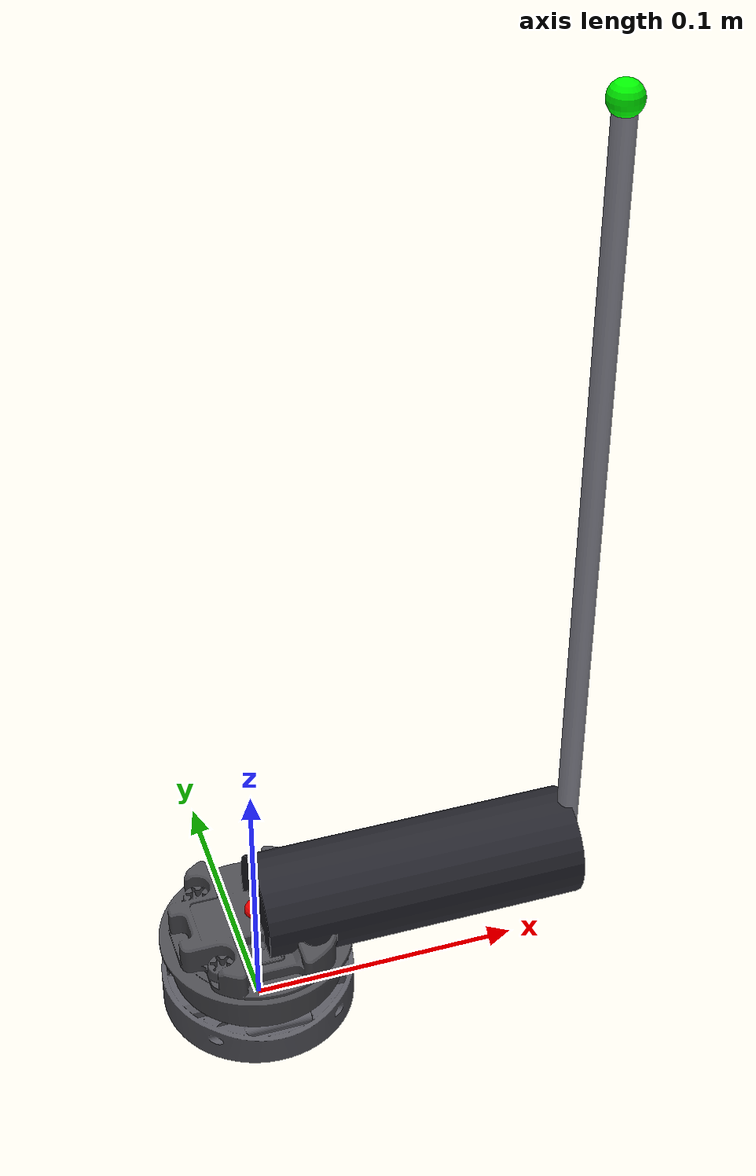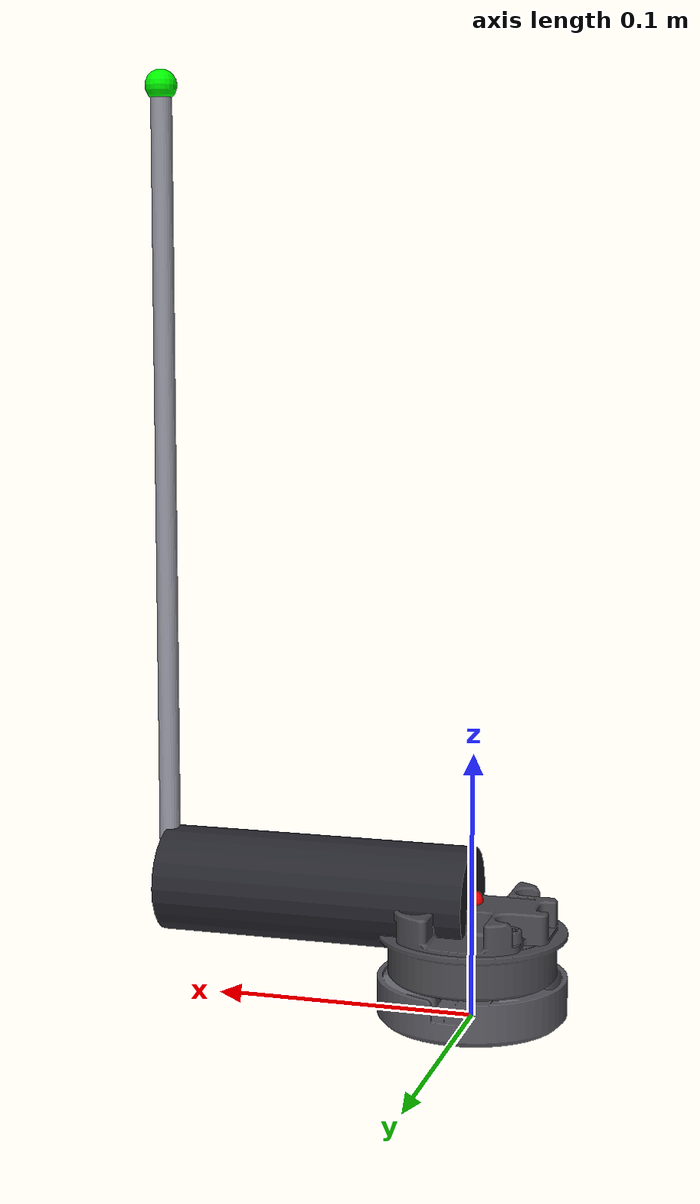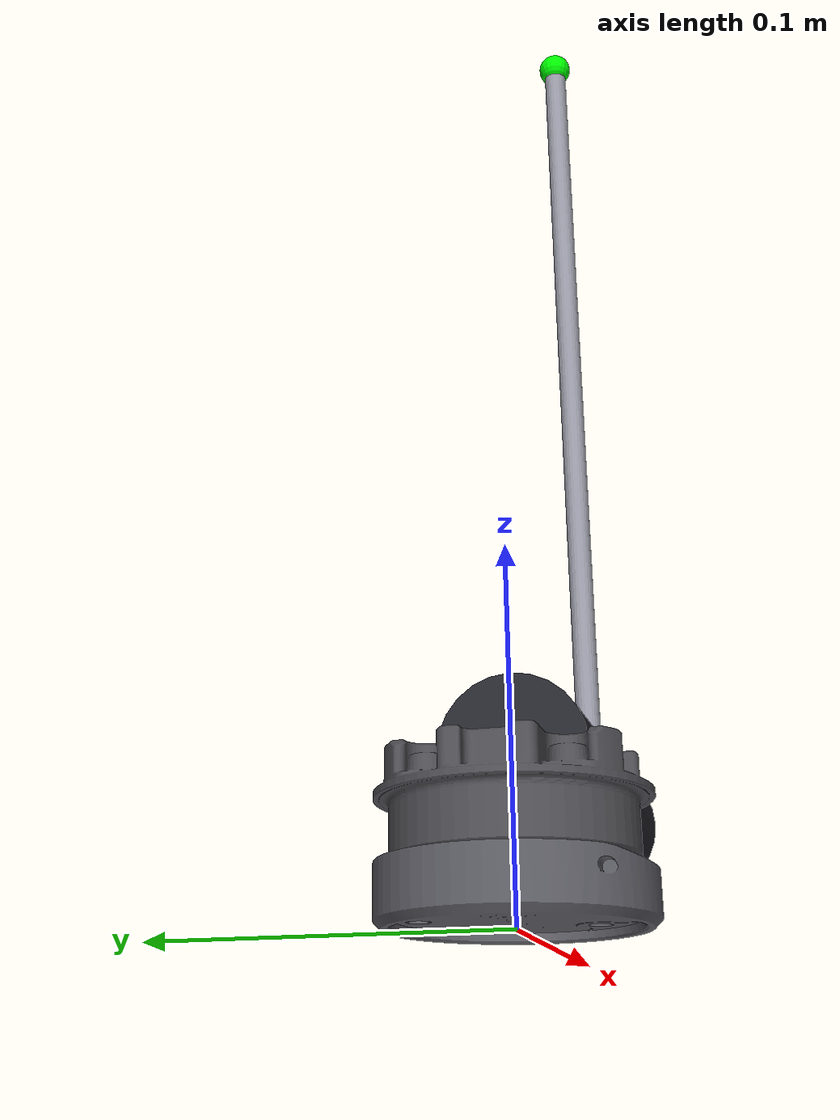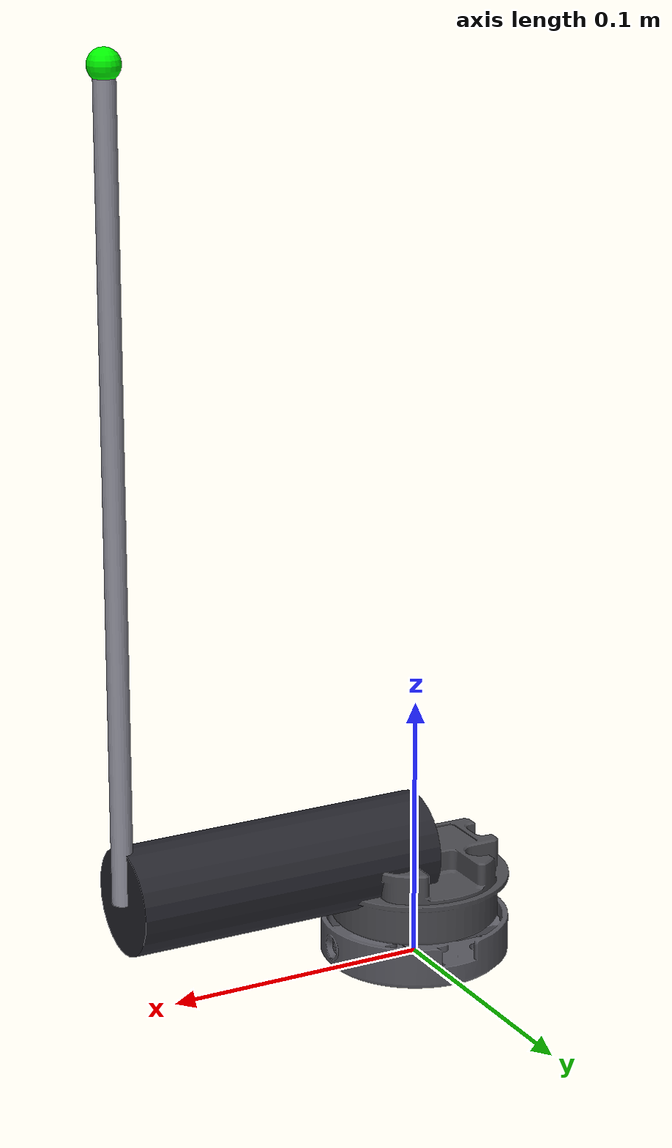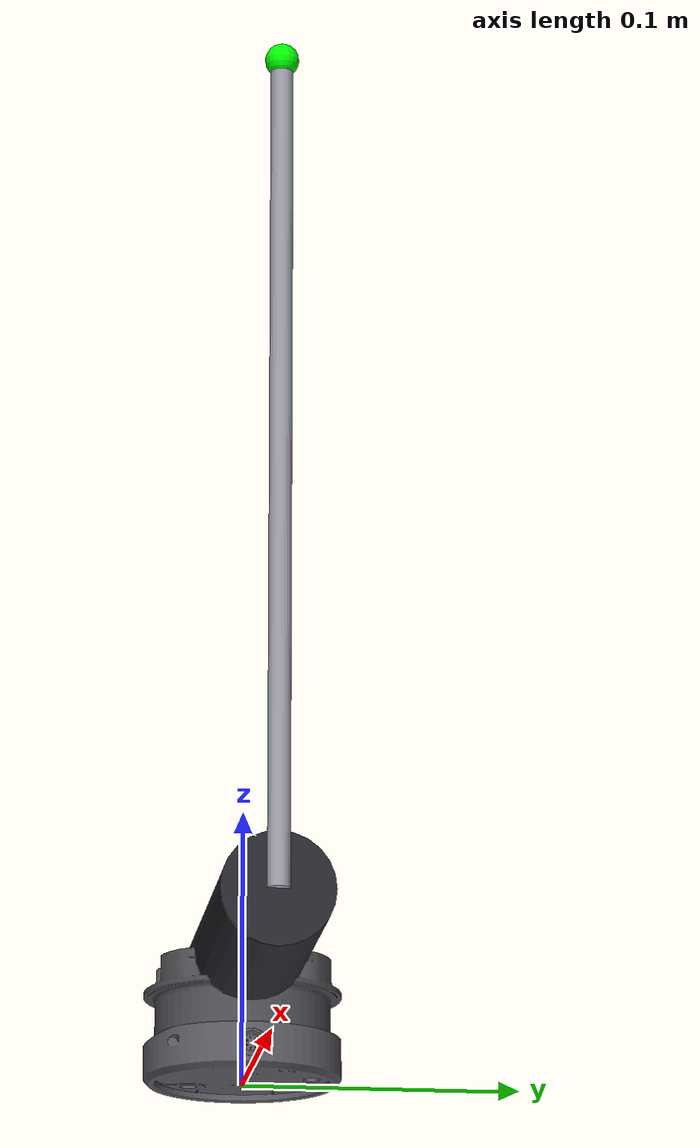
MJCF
<mujoco model="ur5e_pendulum_longrod">

  <default>
    <default class="pendulum">
      <joint damping="0.0001" frictionloss="0.001"/>
      <geom contype="0" conaffinity="0" density="7850"/>
    </default>
  </default>

  <asset>
    <!-- Same real OnRobot tool-changer meshes as the main file. -->
    <mesh name="toolchanger_robot_side_mesh" file="meshes/toolchanger_robot_side.stl"/>
    <mesh name="toolchanger_tool_side_mesh" file="meshes/toolchanger_tool_side.stl"/>
  </asset>

  <worldbody>
    <!-- FLUSH ON THE FLANGE (see "deliberately NOT copied", item 1). -->
    <body name="pendulum_mount" pos="0 0 0">
      <geom name="toolchanger_robot_side" type="mesh" mesh="toolchanger_robot_side_mesh"
            pos="0 0 0.0025" mass="0.0606" class="pendulum" rgba="0.35 0.35 0.38 1"/>
      <geom name="toolchanger_tool_side" type="mesh" mesh="toolchanger_tool_side_mesh"
            pos="0 0 0.0161" quat="0.70710678 0.70710678 0 0"
            mass="0.1394" class="pendulum" rgba="0.3 0.3 0.32 1"/>

      <body name="pendulum_hub" pos="0 0 0.0445">
        <geom name="pendulum_hub_geom" type="cylinder" fromto="0 0 0  0.12 0 0" size="0.020"
              class="pendulum" rgba="0.15 0.15 0.18 1" mass="0.05"/>

        <joint name="pendulum_hinge" type="hinge" axis="1 0 0" pos="0 0 0"
               class="pendulum" range="-3.14159 3.14159" limited="false"/>
        <site name="pendulum_hinge_site" pos="0 0 0" size="0.004" rgba="1 0 0 1"/>

        <body name="pendulum_rod" pos="0.12 0 0">
          <geom name="pendulum_rod_geom" type="cylinder" fromto="0 0 0  0 0 0.30" size="0.004"
                class="pendulum" rgba="0.6 0.6 0.65 1"/>
          <site name="pendulum_tip_site" pos="0 0 0.30" size="0.006" rgba="0 1 0 1"/>
        </body>
      </body>
    </body>
  </worldbody>

  <sensor>
    <jointpos name="pendulum_angle_sensor" joint="pendulum_hinge"/>
  </sensor>
</mujoco>
